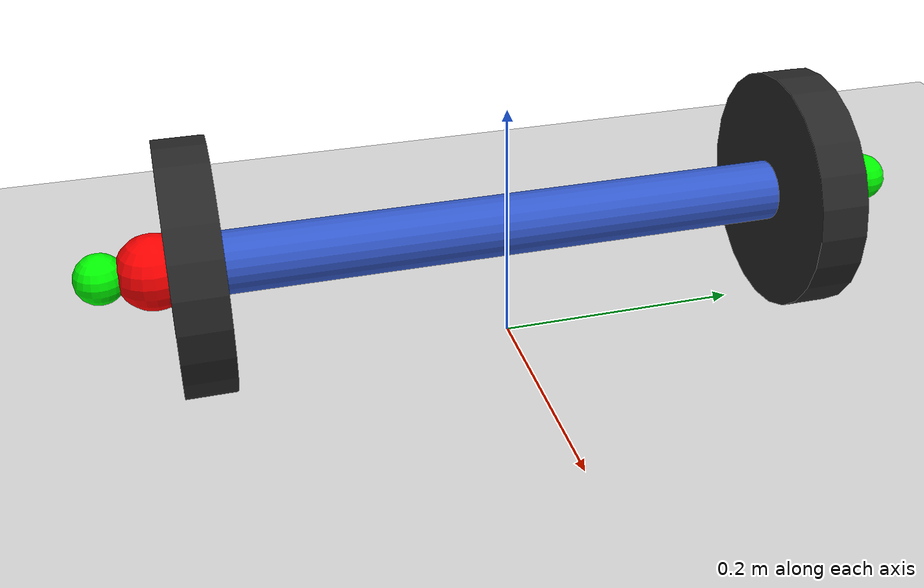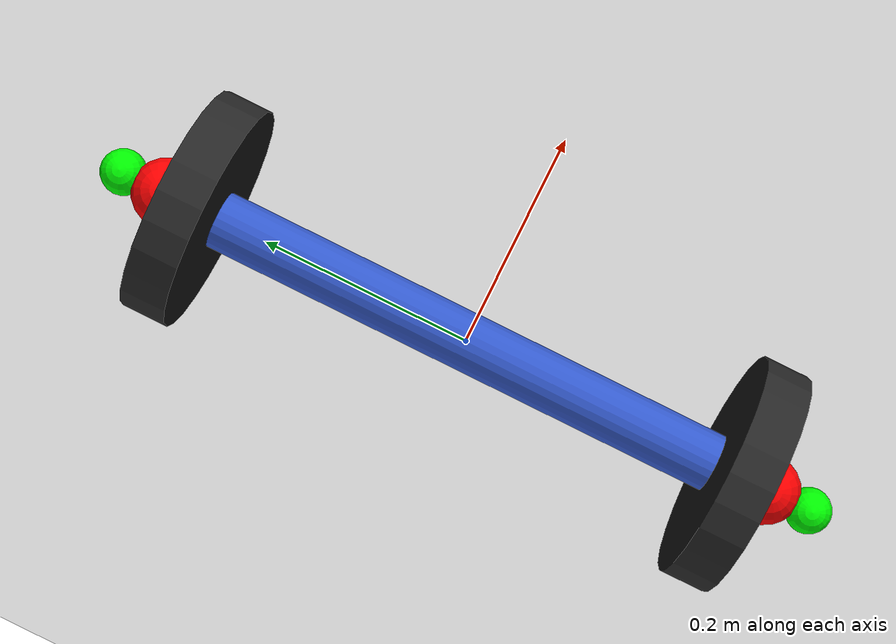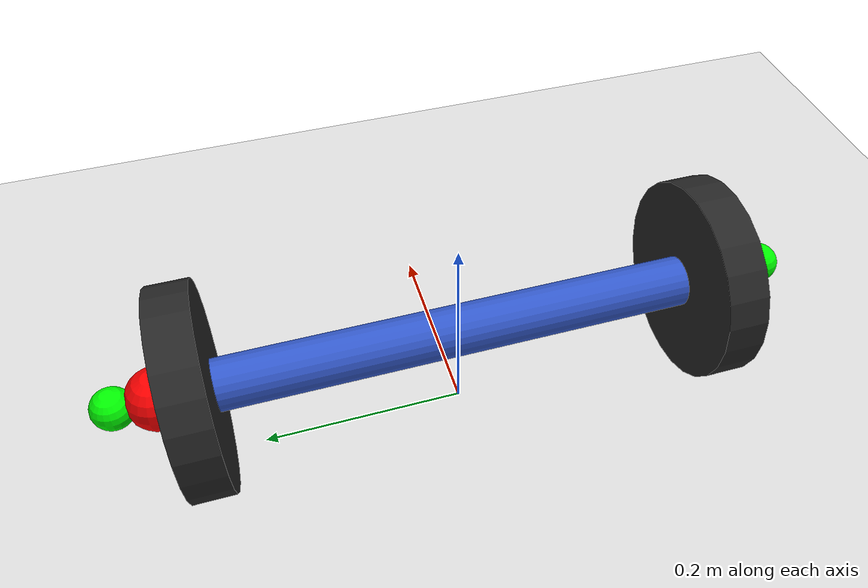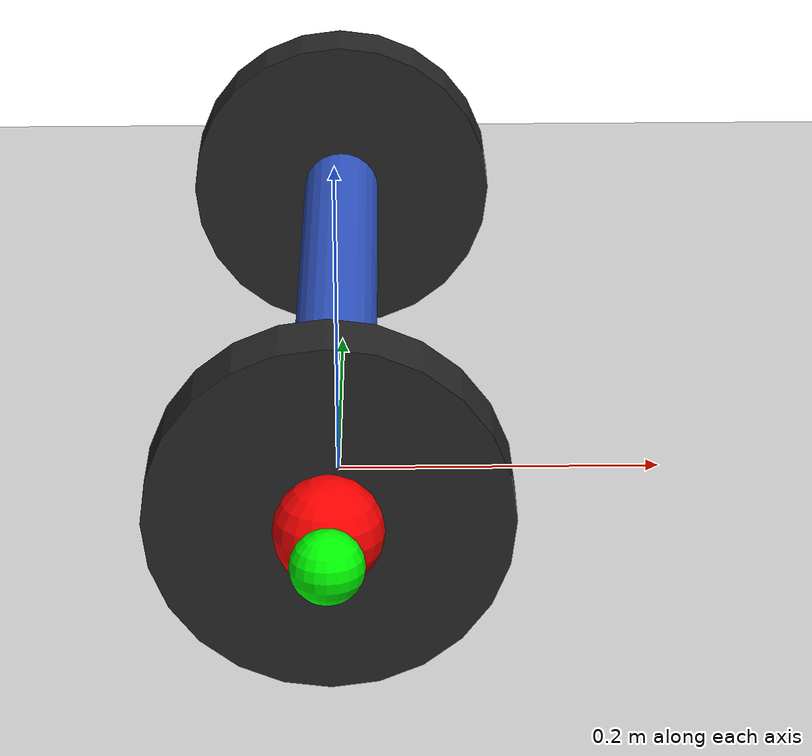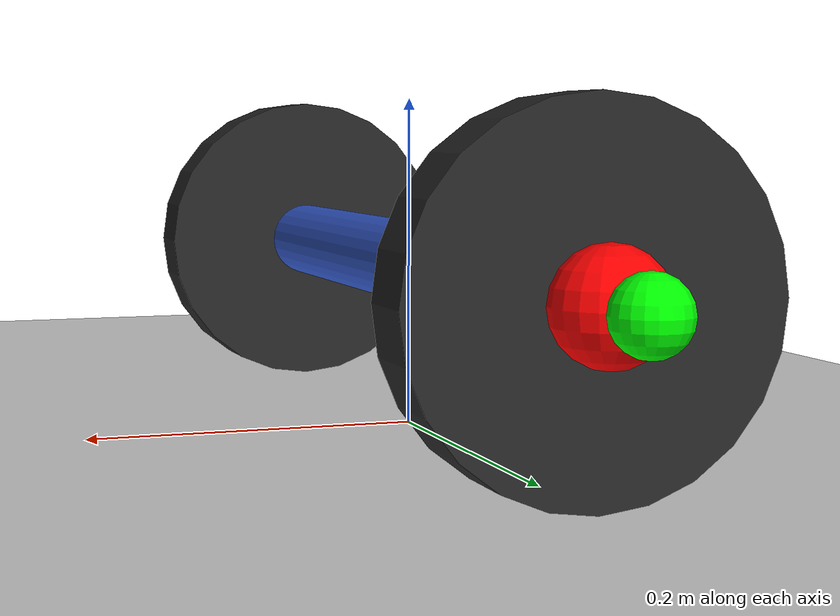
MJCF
<mujoco model="joints_actuators">

    <compiler angle="degree"/>

    <worldbody>

        <light
            pos="0 0 2"
            dir="0 0 -1"
        />

        <geom
            name="floor"
            type="plane"
            size="2 2 0.1"
            rgba="0.85 0.85 0.85 1"
        />

        <body name="robot" pos="0 0 0.10">

            <!-- Chassis -->
            <geom
                type="cylinder"
                fromto="0 -0.25 0 0 0.25 0"
                size="0.025"
                rgba="0.20 0.35 0.80 1"
            />

            <!-- Left wheel -->
            <body name="left_wheel" pos="0 0.25 0">

                <geom
                    type="cylinder"
                    size="0.10 0.02"
                    euler="90 0 0"
                    rgba="0.15 0.15 0.15 1"
                />

                <!-- Joint - red -->
                <geom
                    type="sphere"
                    pos="0 0.03 0"
                    size="0.03"
                    rgba="1 0 0 1"
                    contype="0"
                    conaffinity="0"
                />

                <!-- Actuator - green -->
                <geom
                    type="sphere"
                    pos="0 0.07 0"
                    size="0.02"
                    rgba="0 1 0 1"
                    contype="0"
                    conaffinity="0"
                />

            </body>

            <!-- Right wheel -->
            <body name="right_wheel" pos="0 -0.25 0">

                <geom
                    type="cylinder"
                    size="0.10 0.02"
                    euler="90 0 0"
                    rgba="0.15 0.15 0.15 1"
                />

                <!-- Joint - red -->
                <geom
                    type="sphere"
                    pos="0 -0.03 0"
                    size="0.03"
                    rgba="1 0 0 1"
                    contype="0"
                    conaffinity="0"
                />

                <!-- Actuator - green -->
                <geom
                    type="sphere"
                    pos="0 -0.07 0"
                    size="0.02"
                    rgba="0 1 0 1"
                    contype="0"
                    conaffinity="0"
                />

            </body>

        </body>

    </worldbody>

</mujoco>
